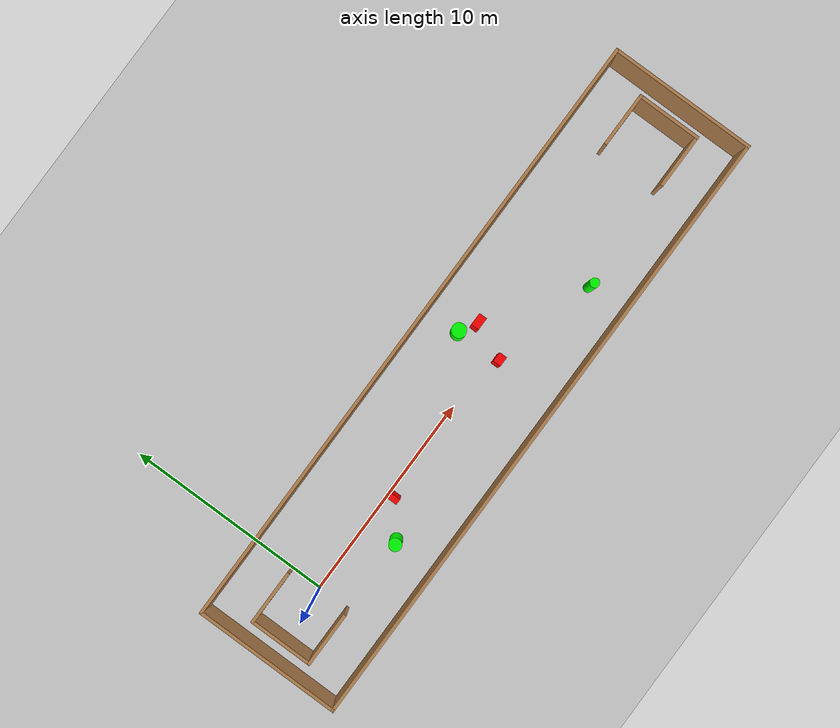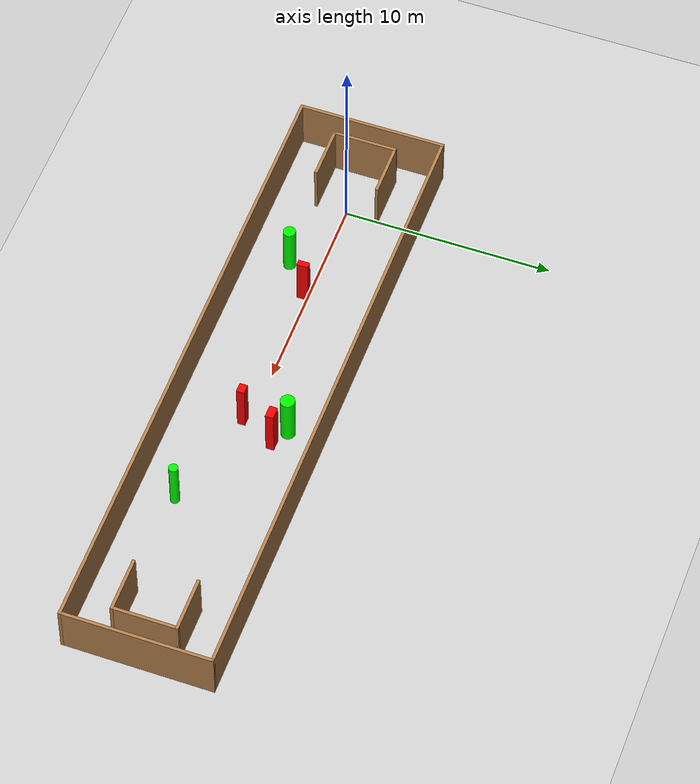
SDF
<sdf version="1.7">
 <world name="default">
  <light name="sun" type="directional">
   <pose>0 0 10 0 -0 0</pose>
   <diffuse>0.8 0.8 0.8 1</diffuse>
   <specular>0.2 0.2 0.2 1</specular>
   <attenuation>
    <range>1000</range>
    <constant>0.9</constant>
    <linear>0.01</linear>
    <quadratic>0.001</quadratic>
   </attenuation>
   <direction>-0.5 0.1 -0.9</direction>
   <spot><inner_angle>0</inner_angle><outer_angle>0</outer_angle><falloff>0</falloff></spot>
  </light>
  <model name="ground_plane">
   <static>1</static>
   <link name="link">
    <collision name="collision">
     <geometry><plane><normal>0 0 1</normal><size>100 100</size></plane></geometry>
     <surface>
      <contact><collide_bitmask>65535</collide_bitmask></contact>
      <friction><ode><mu>100</mu><mu2>50</mu2></ode></friction>
     </surface>
    </collision>
    <visual name="visual">
     <cast_shadows>0</cast_shadows>
     <geometry><plane><normal>0 0 1</normal><size>100 100</size></plane></geometry>
     <material>
      <script><uri>file://media/materials/scripts/gazebo.material</uri><name>Gazebo/Grey</name></script>
     </material>
    </visual>
   </link>
  </model>
  <gravity>0 0 -9.8</gravity>
  <magnetic_field>6e-06 2.3e-05 -4.2e-05</magnetic_field>
  <atmosphere type="adiabatic"/>
  <physics type="ode">
   <max_step_size>0.001</max_step_size>
   <real_time_factor>1</real_time_factor>
   <real_time_update_rate>1000</real_time_update_rate>
  </physics>
  <scene><ambient>0.4 0.4 0.4 1</ambient><background>0.7 0.7 0.7 1</background><shadows>1</shadows></scene>
  <spherical_coordinates>
   <surface_model>EARTH_WGS84</surface_model>
   <latitude_deg>0</latitude_deg>
   <longitude_deg>0</longitude_deg>
   <elevation>0</elevation>
   <heading_deg>0</heading_deg>
  </spherical_coordinates>
  <model name="my_base_walls">
   <link name="Wall_0">
    <collision name="Wall_0_Collision">
     <geometry><box><size>7.15 0.15 2.5</size></box></geometry>
     <pose>0 0 1.25 0 -0 0</pose>
    </collision>
    <visual name="Wall_0_Visual">
     <pose>0 0 1.25 0 -0 0</pose>
     <geometry><box><size>7.15 0.15 2.5</size></box></geometry>
     <material>
      <script><uri>file://media/materials/scripts/gazebo.material</uri><name>Gazebo/Wood</name></script>
      <ambient>1 1 1 1</ambient>
     </material>
     <meta><layer>0</layer></meta>
    </visual>
    <pose>-15 0 0 0 -0 1.5708</pose>
   </link>
   <link name="Wall_10">
    <collision name="Wall_10_Collision">
     <geometry><box><size>2.65 0.15 2.5</size></box></geometry>
     <pose>0 0 1.25 0 -0 0</pose>
    </collision>
    <visual name="Wall_10_Visual">
     <pose>0 0 1.25 0 -0 0</pose>
     <geometry><box><size>2.65 0.15 2.5</size></box></geometry>
     <material>
      <script><uri>file://media/materials/scripts/gazebo.material</uri><name>Gazebo/Wood</name></script>
      <ambient>1 1 1 1</ambient>
     </material>
     <meta><layer>0</layer></meta>
    </visual>
    <pose>-12.75 -1.5 0 0 -0 0</pose>
   </link>
   <link name="Wall_12">
    <collision name="Wall_12_Collision">
     <geometry><box><size>2.65 0.15 2.5</size></box></geometry>
     <pose>0 0 1.25 0 -0 0</pose>
    </collision>
    <visual name="Wall_12_Visual">
     <pose>0 0 1.25 0 -0 0</pose>
     <geometry><box><size>2.65 0.15 2.5</size></box></geometry>
     <material>
      <script><uri>file://media/materials/scripts/gazebo.material</uri><name>Gazebo/Wood</name></script>
      <ambient>1 1 1 1</ambient>
     </material>
     <meta><layer>0</layer></meta>
    </visual>
    <pose>-12.75 1.5 0 0 -0 0</pose>
   </link>
   <link name="Wall_14">
    <collision name="Wall_14_Collision">
     <geometry><box><size>3.15 0.15 2.5</size></box></geometry>
     <pose>0 0 1.25 0 -0 0</pose>
    </collision>
    <visual name="Wall_14_Visual">
     <pose>0 0 1.25 0 -0 0</pose>
     <geometry><box><size>3.15 0.15 2.5</size></box></geometry>
     <material>
      <script><uri>file://media/materials/scripts/gazebo.material</uri><name>Gazebo/Wood</name></script>
      <ambient>1 1 1 1</ambient>
     </material>
     <meta><layer>0</layer></meta>
    </visual>
    <pose>14 0 0 0 -0 -1.5708</pose>
   </link>
   <link name="Wall_15">
    <collision name="Wall_15_Collision">
     <geometry><box><size>2.65 0.15 2.5</size></box></geometry>
     <pose>0 0 1.25 0 -0 0</pose>
    </collision>
    <visual name="Wall_15_Visual">
     <pose>0 0 1.25 0 -0 0</pose>
     <geometry><box><size>2.65 0.15 2.5</size></box></geometry>
     <material>
      <script><uri>file://media/materials/scripts/gazebo.material</uri><name>Gazebo/Wood</name></script>
      <ambient>1 1 1 1</ambient>
     </material>
     <meta><layer>0</layer></meta>
    </visual>
    <pose>12.75 -1.5 0 0 -0 3.14159</pose>
   </link>
   <link name="Wall_17">
    <collision name="Wall_17_Collision">
     <geometry><box><size>2.65 0.15 2.5</size></box></geometry>
     <pose>0 0 1.25 0 -0 0</pose>
    </collision>
    <visual name="Wall_17_Visual">
     <pose>0 0 1.25 0 -0 0</pose>
     <geometry><box><size>2.65 0.15 2.5</size></box></geometry>
     <material>
      <script><uri>file://media/materials/scripts/gazebo.material</uri><name>Gazebo/Wood</name></script>
      <ambient>1 1 1 1</ambient>
     </material>
     <meta><layer>0</layer></meta>
    </visual>
    <pose>12.75 1.5 0 0 -0 3.14159</pose>
   </link>
   <link name="Wall_2">
    <collision name="Wall_2_Collision">
     <geometry><box><size>30.15 0.15 2.5</size></box></geometry>
     <pose>0 0 1.25 0 -0 0</pose>
    </collision>
    <visual name="Wall_2_Visual">
     <pose>0 0 1.25 0 -0 0</pose>
     <geometry><box><size>30.15 0.15 2.5</size></box></geometry>
     <material>
      <script><uri>file://media/materials/scripts/gazebo.material</uri><name>Gazebo/Wood</name></script>
      <ambient>1 1 1 1</ambient>
     </material>
     <meta><layer>0</layer></meta>
    </visual>
    <pose>-0 -3.5 0 0 -0 0</pose>
   </link>
   <link name="Wall_4">
    <collision name="Wall_4_Collision">
     <geometry><box><size>30.15 0.15 2.5</size></box></geometry>
     <pose>0 0 1.25 0 -0 0</pose>
    </collision>
    <visual name="Wall_4_Visual">
     <pose>0 0 1.25 0 -0 0</pose>
     <geometry><box><size>30.15 0.15 2.5</size></box></geometry>
     <material>
      <script><uri>file://media/materials/scripts/gazebo.material</uri><name>Gazebo/Wood</name></script>
      <ambient>1 1 1 1</ambient>
     </material>
     <meta><layer>0</layer></meta>
    </visual>
    <pose>-0 3.5 0 0 -0 0</pose>
   </link>
   <link name="Wall_6">
    <collision name="Wall_6_Collision">
     <geometry><box><size>7.15 0.15 2.5</size></box></geometry>
     <pose>0 0 1.25 0 -0 0</pose>
    </collision>
    <visual name="Wall_6_Visual">
     <pose>0 0 1.25 0 -0 0</pose>
     <geometry><box><size>7.15 0.15 2.5</size></box></geometry>
     <material>
      <script><uri>file://media/materials/scripts/gazebo.material</uri><name>Gazebo/Wood</name></script>
      <ambient>1 1 1 1</ambient>
     </material>
     <meta><layer>0</layer></meta>
    </visual>
    <pose>15 0 0 0 -0 -1.5708</pose>
   </link>
   <link name="Wall_9">
    <collision name="Wall_9_Collision">
     <geometry><box><size>3.15 0.15 2.5</size></box></geometry>
     <pose>0 0 1.25 0 -0 0</pose>
    </collision>
    <visual name="Wall_9_Visual">
     <pose>0 0 1.25 0 -0 0</pose>
     <geometry><box><size>3.15 0.15 2.5</size></box></geometry>
     <material>
      <script><uri>file://media/materials/scripts/gazebo.material</uri><name>Gazebo/Wood</name></script>
      <ambient>1 1 1 1</ambient>
     </material>
     <meta><layer>0</layer></meta>
    </visual>
    <pose>-14 0 0 0 -0 -1.5708</pose>
   </link>
   <static>1</static>
   <pose>11.5 0 0 0 -0 0</pose>
  </model>
  <model name="cylinder1">
   <static>1</static>
   <link name="link">
    <inertial>
     <mass>1</mass>
     <inertia><ixx>0.5</ixx><ixy>0</ixy><ixz>0</ixz><iyy>0.5</iyy><iyz>0</iyz><izz>1</izz></inertia>
    </inertial>
    <collision name="collision">
     <geometry><cylinder><radius>0.22212495814382519</radius><length>2.5</length></cylinder></geometry>
    </collision>
    <visual name="visual">
     <geometry><cylinder><radius>0.22212495814382519</radius><length>2.5</length></cylinder></geometry>
     <material>
      <ambient>0 1 0 1</ambient>
      <diffuse>0 1 0 1</diffuse>
      <specular>0.1 0.1 0.1 1</specular>
      <emissive>0 0 0 0</emissive>
     </material>
    </visual>
   </link>
   <pose>17.852098389188605 -1.6665174149464914 1.25 0 0 0</pose>
  </model>
  <model name="cylinder2">
   <static>1</static>
   <link name="link">
    <inertial>
     <mass>1</mass>
     <inertia><ixx>0.5</ixx><ixy>0</ixy><ixz>0</ixz><iyy>0.5</iyy><iyz>0</iyz><izz>1</izz></inertia>
    </inertial>
    <collision name="collision">
     <geometry><cylinder><radius>0.34460900219268414</radius><length>2.5</length></cylinder></geometry>
    </collision>
    <visual name="visual">
     <geometry><cylinder><radius>0.34460900219268414</radius><length>2.5</length></cylinder></geometry>
     <material>
      <ambient>0 1 0 1</ambient>
      <diffuse>0 1 0 1</diffuse>
      <specular>0.1 0.1 0.1 1</specular>
      <emissive>0 0 0 0</emissive>
     </material>
    </visual>
   </link>
   <pose>12.753843830035793 1.8044213944209968 1.25 0 0 0</pose>
  </model>
  <model name="cylinder3">
   <static>1</static>
   <link name="link">
    <inertial>
     <mass>1</mass>
     <inertia><ixx>0.5</ixx><ixy>0</ixy><ixz>0</ixz><iyy>0.5</iyy><iyz>0</iyz><izz>1</izz></inertia>
    </inertial>
    <collision name="collision">
     <geometry><cylinder><radius>0.30011264252770864</radius><length>2.5</length></cylinder></geometry>
    </collision>
    <visual name="visual">
     <geometry><cylinder><radius>0.30011264252770864</radius><length>2.5</length></cylinder></geometry>
     <material>
      <ambient>0 1 0 1</ambient>
      <diffuse>0 1 0 1</diffuse>
      <specular>0.1 0.1 0.1 1</specular>
      <emissive>0 0 0 0</emissive>
     </material>
    </visual>
   </link>
   <pose>3.755897439728196 -1.4473182631717525 1.25 0 0 0</pose>
  </model>
  <model name="box1">
   <static>1</static>
   <link name="link">
    <inertial>
     <mass>1</mass>
     <inertia><ixx>0.083</ixx><ixy>0</ixy><ixz>0</ixz><iyy>0.083</iyy><iyz>0</iyz><izz>0.083</izz></inertia>
    </inertial>
    <collision name="collision">
     <geometry><box><size>0.5922846188342743 0.39132588678057934 2.5</size></box></geometry>
    </collision>
    <visual name="visual">
     <geometry><box><size>0.5922846188342743 0.39132588678057934 2.5</size></box></geometry>
     <material>
      <ambient>1 0 0 1</ambient>
      <diffuse>1 0 0 1</diffuse>
      <specular>0.1 0.1 0.1 1</specular>
      <emissive>0 0 0 0</emissive>
     </material>
    </visual>
    <sensor name="my_contact" type="contact">
     <contact><collision>box_collision</collision><topic>__default_topic__</topic></contact>
    </sensor>
   </link>
   <pose>13.573123040552362 1.3379936798262255 1.25 0 0 0</pose>
  </model>
  <model name="box2">
   <static>1</static>
   <link name="link">
    <inertial>
     <mass>1</mass>
     <inertia><ixx>0.083</ixx><ixy>0</ixy><ixz>0</ixz><iyy>0.083</iyy><iyz>0</iyz><izz>0.083</izz></inertia>
    </inertial>
    <collision name="collision">
     <geometry><box><size>0.46362307859510976 0.37721468944517306 2.5</size></box></geometry>
    </collision>
    <visual name="visual">
     <geometry><box><size>0.46362307859510976 0.37721468944517306 2.5</size></box></geometry>
     <material>
      <ambient>1 0 0 1</ambient>
      <diffuse>1 0 0 1</diffuse>
      <specular>0.1 0.1 0.1 1</specular>
      <emissive>0 0 0 0</emissive>
     </material>
    </visual>
    <sensor name="my_contact" type="contact">
     <contact><collision>box_collision</collision><topic>__default_topic__</topic></contact>
    </sensor>
   </link>
   <pose>12.80004865351448 -0.35264752929352916 1.25 0 0 0</pose>
  </model>
  <model name="box3">
   <static>1</static>
   <link name="link">
    <inertial>
     <mass>1</mass>
     <inertia><ixx>0.083</ixx><ixy>0</ixy><ixz>0</ixz><iyy>0.083</iyy><iyz>0</iyz><izz>0.083</izz></inertia>
    </inertial>
    <collision name="collision">
     <geometry><box><size>0.2773627851578594 0.5485412646148095 2.5</size></box></geometry>
    </collision>
    <visual name="visual">
     <geometry><box><size>0.2773627851578594 0.5485412646148095 2.5</size></box></geometry>
     <material>
      <ambient>1 0 0 1</ambient>
      <diffuse>1 0 0 1</diffuse>
      <specular>0.1 0.1 0.1 1</specular>
      <emissive>0 0 0 0</emissive>
     </material>
    </visual>
    <sensor name="my_contact" type="contact">
     <contact><collision>box_collision</collision><topic>__default_topic__</topic></contact>
    </sensor>
   </link>
   <pose>5.292874362325122 -0.1990981352438208 1.25 0 0 0</pose>
  </model>
 </world>
</sdf>
